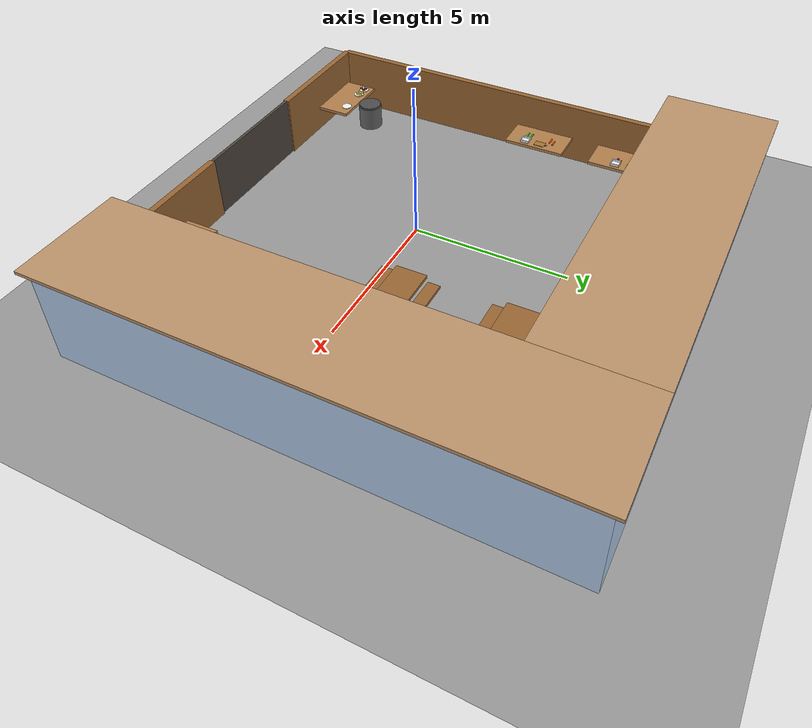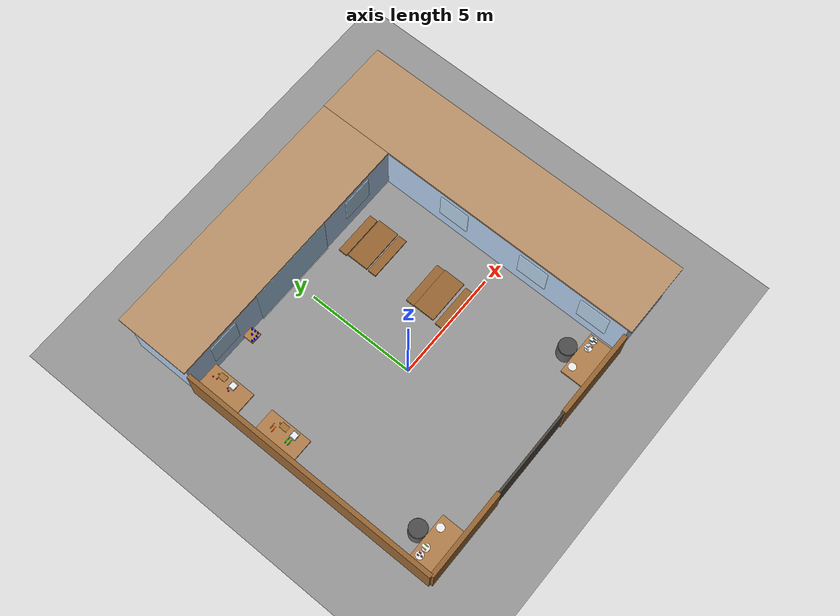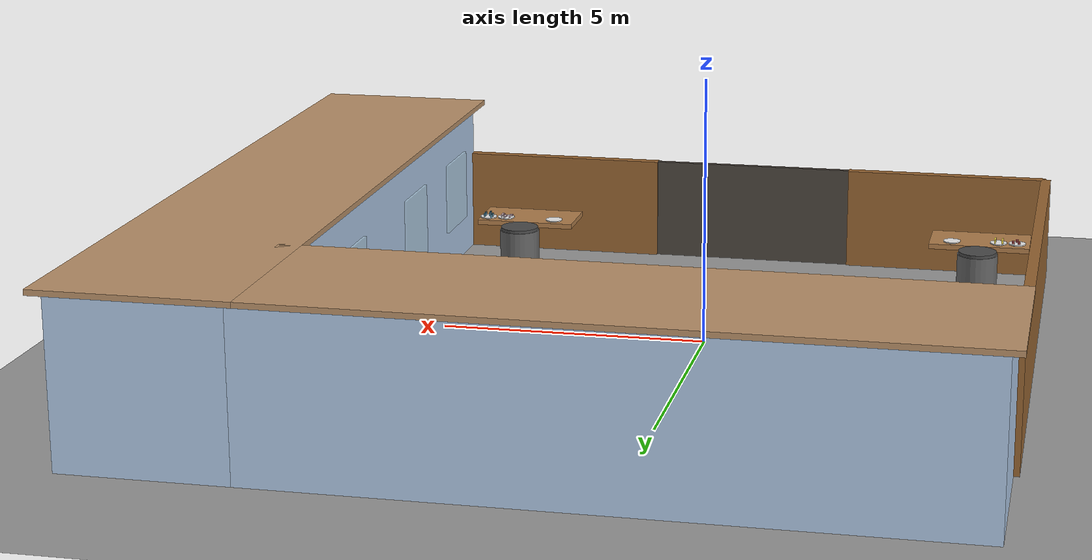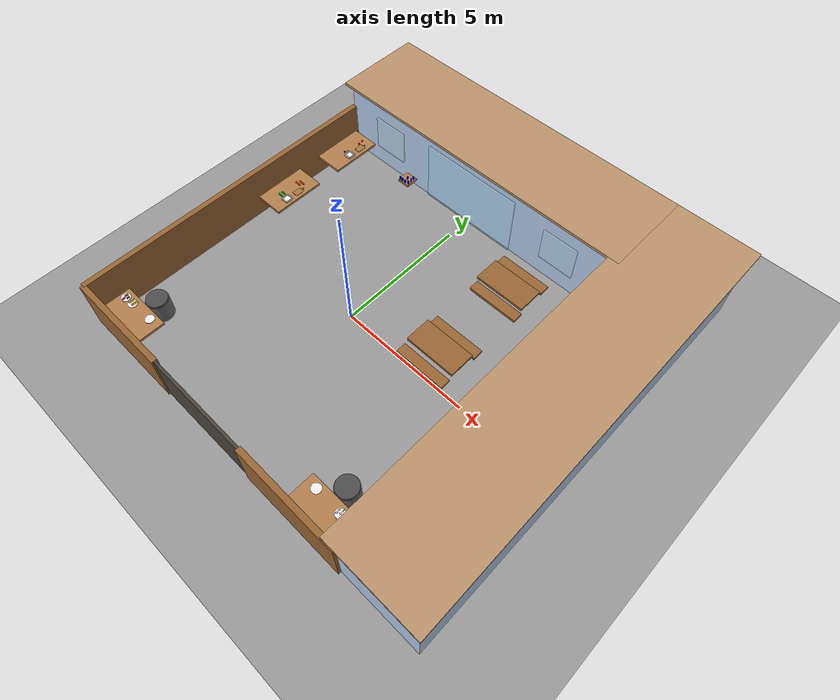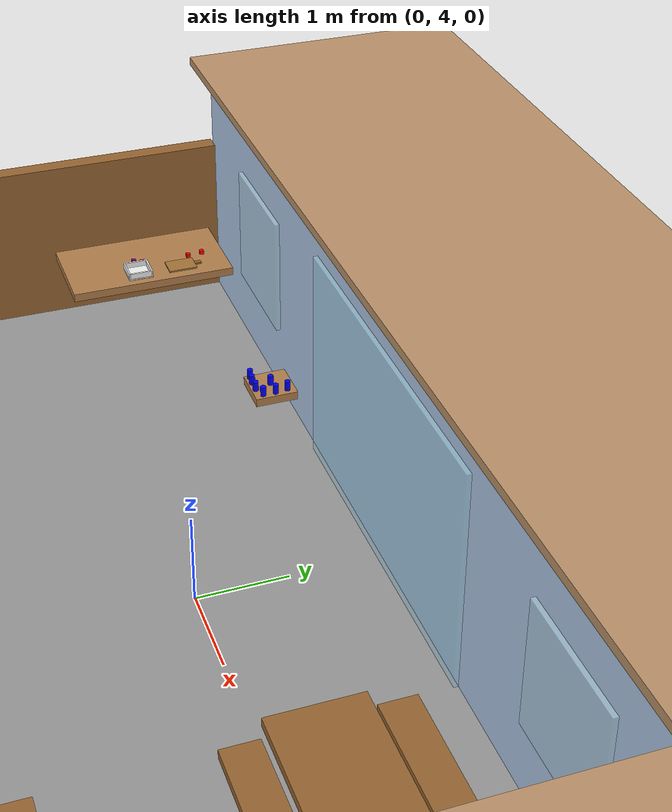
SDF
<sdf version="1.7">
 <world name="backyard_b">
  <physics name="default_physics" type="dart">
   <max_step_size>0.001</max_step_size>
   <real_time_factor>1</real_time_factor>
   <real_time_update_rate>1000</real_time_update_rate>
  </physics>
  <plugin name="gz::sim::systems::Physics" filename="ignition-gazebo-physics-system"/>
  <plugin name="gz::sim::systems::UserCommands" filename="ignition-gazebo-user-commands-system"/>
  <plugin name="gz::sim::systems::SceneBroadcaster" filename="ignition-gazebo-scene-broadcaster-system"/>
  <plugin name="gz::sim::systems::Contact" filename="ignition-gazebo-contact-system"/>
  <gravity>0 0 -9.8</gravity>
  <atmosphere type="adiabatic"/>
  <scene><ambient>0.6 0.6 0.6 1</ambient><background>0.8 0.9 1 1</background><shadows>false</shadows></scene>
  <light name="sun" type="directional">
   <cast_shadows>false</cast_shadows>
   <pose>0 0 10 0 0 0</pose>
   <diffuse>1 1 1 1</diffuse>
   <specular>0.2 0.2 0.2 1</specular>
   <direction>-0.5 0.5 -1</direction>
  </light>
  <model name="ground">
   <static>true</static>
   <link name="link">
    <collision name="collision">
     <geometry><plane><normal>0 0 1</normal><size>100 100</size></plane></geometry>
     <surface>
      <friction><ode><mu>1.0</mu><mu2>1.0</mu2></ode></friction>
      <contact><ode><min_depth>0.001</min_depth></ode></contact>
     </surface>
    </collision>
    <visual name="visual">
     <geometry><plane><normal>0 0 1</normal><size>13 12</size></plane></geometry>
     <material><ambient>0.55 0.55 0.55 1</ambient><diffuse>0.6 0.6 0.6 1</diffuse></material>
    </visual>
   </link>
  </model>
  <model name="fence_left">
   <static>true</static>
   <pose>-6 0 1 0 0 0</pose>
   <link name="link">
    <visual name="visual">
     <geometry><box><size>0.2 12 2</size></box></geometry>
     <material><ambient>0.6 0.4 0.2 1</ambient><diffuse>0.6 0.4 0.2 1</diffuse></material>
    </visual>
   </link>
  </model>
  <model name="fence_south_left">
   <static>true</static>
   <pose>-4 -6 1 0 0 0</pose>
   <link name="link">
    <visual name="visual">
     <geometry><box><size>4 0.2 2</size></box></geometry>
     <material><ambient>0.6 0.4 0.2 1</ambient><diffuse>0.6 0.4 0.2 1</diffuse></material>
    </visual>
   </link>
  </model>
  <model name="fence_south_right">
   <static>true</static>
   <pose>4 -6 1 0 0 0</pose>
   <link name="link">
    <visual name="visual">
     <geometry><box><size>4 0.2 2</size></box></geometry>
     <material><ambient>0.6 0.4 0.2 1</ambient><diffuse>0.6 0.4 0.2 1</diffuse></material>
    </visual>
   </link>
  </model>
  <model name="gate">
   <static>true</static>
   <pose>0 -6 1 0 0 0</pose>
   <link name="link">
    <visual name="visual">
     <geometry><box><size>4 0.1 2</size></box></geometry>
     <material><ambient>0.25 0.22 0.2 1</ambient><diffuse>0.3 0.27 0.24 1</diffuse></material>
    </visual>
   </link>
  </model>
  <model name="house">
   <static>true</static>
   <link name="wing_top">
    <pose>0 7.5 1.5 0 0 0</pose>
    <visual name="visual">
     <geometry><box><size>12 3 3</size></box></geometry>
     <material><ambient>0.65 0.75 0.87 1</ambient><diffuse>0.70 0.80 0.92 1</diffuse></material>
    </visual>
   </link>
   <link name="wing_right">
    <pose>7.5 1.5 1.5 0 0 0</pose>
    <visual name="visual">
     <geometry><box><size>3 15 3</size></box></geometry>
     <material><ambient>0.65 0.75 0.87 1</ambient><diffuse>0.70 0.80 0.92 1</diffuse></material>
    </visual>
   </link>
   <link name="roof_trim_top">
    <pose>0 7.5 3.05 0 0 0</pose>
    <visual name="visual">
     <geometry><box><size>12.4 3.4 0.1</size></box></geometry>
     <material><ambient>0.68 0.53 0.38 1</ambient><diffuse>0.74 0.58 0.42 1</diffuse></material>
    </visual>
   </link>
   <link name="roof_trim_right">
    <pose>7.5 1.5 3.05 0 0 0</pose>
    <visual name="visual">
     <geometry><box><size>3.4 15.4 0.1</size></box></geometry>
     <material><ambient>0.68 0.53 0.38 1</ambient><diffuse>0.74 0.58 0.42 1</diffuse></material>
    </visual>
   </link>
   <link name="window_top_1">
    <pose>-4 6 1.5 0 0 0</pose>
    <visual name="visual">
     <geometry><box><size>1.4 0.1 1.4</size></box></geometry>
     <material><ambient>0.75 0.88 0.95 0.6</ambient><diffuse>0.75 0.88 0.95 0.6</diffuse></material>
    </visual>
   </link>
   <link name="window_top_2">
    <pose>4 6 1.5 0 0 0</pose>
    <visual name="visual">
     <geometry><box><size>1.4 0.1 1.4</size></box></geometry>
     <material><ambient>0.75 0.88 0.95 0.6</ambient><diffuse>0.75 0.88 0.95 0.6</diffuse></material>
    </visual>
   </link>
   <link name="window_right_1">
    <pose>6 -4.5 1.5 0 0 0</pose>
    <visual name="visual">
     <geometry><box><size>0.1 1.4 1.4</size></box></geometry>
     <material><ambient>0.75 0.88 0.95 0.6</ambient><diffuse>0.75 0.88 0.95 0.6</diffuse></material>
    </visual>
   </link>
   <link name="window_right_2">
    <pose>6 -1.5 1.5 0 0 0</pose>
    <visual name="visual">
     <geometry><box><size>0.1 1.4 1.4</size></box></geometry>
     <material><ambient>0.75 0.88 0.95 0.6</ambient><diffuse>0.75 0.88 0.95 0.6</diffuse></material>
    </visual>
   </link>
   <link name="window_right_3">
    <pose>6 2.5 1.5 0 0 0</pose>
    <visual name="visual">
     <geometry><box><size>0.1 1.4 1.4</size></box></geometry>
     <material><ambient>0.75 0.88 0.95 0.6</ambient><diffuse>0.75 0.88 0.95 0.6</diffuse></material>
    </visual>
   </link>
  </model>
  <model name="door">
   <static>true</static>
   <pose>0 6 1.25 0 0 0</pose>
   <link name="link">
    <visual name="visual">
     <geometry><box><size>4 0.1 2.5</size></box></geometry>
     <material><ambient>0.7 0.9 1 0.5</ambient><diffuse>0.7 0.9 1 0.5</diffuse></material>
    </visual>
   </link>
  </model>
  <model name="grill">
   <static>true</static>
   <pose>-4.77 -4.39 0 0 0 0</pose>
   <link name="body">
    <pose>0 0 0.40 0 0 0</pose>
    <visual name="visual">
     <geometry><cylinder><radius>0.4</radius><length>0.80</length></cylinder></geometry>
     <material><ambient>0.3 0.3 0.3 1</ambient><diffuse>0.4 0.4 0.4 1</diffuse></material>
    </visual>
   </link>
   <link name="top">
    <pose>0 0 0.83 0 0 0</pose>
    <collision name="collision">
     <geometry><cylinder><radius>0.38</radius><length>0.06</length></cylinder></geometry>
    </collision>
    <visual name="visual">
     <geometry><cylinder><radius>0.38</radius><length>0.06</length></cylinder></geometry>
     <material><ambient>0.2 0.2 0.2 1</ambient><diffuse>0.3 0.3 0.3 1</diffuse></material>
    </visual>
   </link>
  </model>
  <model name="fish_grill">
   <static>true</static>
   <pose>4.61 -4.4 0 0 0 0</pose>
   <link name="body">
    <pose>0 0 0.40 0 0 0</pose>
    <visual name="visual">
     <geometry><cylinder><radius>0.4</radius><length>0.80</length></cylinder></geometry>
     <material><ambient>0.3 0.3 0.3 1</ambient><diffuse>0.4 0.4 0.4 1</diffuse></material>
    </visual>
   </link>
   <link name="top">
    <pose>0 0 0.83 0 0 0</pose>
    <collision name="collision">
     <geometry><cylinder><radius>0.38</radius><length>0.06</length></cylinder></geometry>
    </collision>
    <visual name="visual">
     <geometry><cylinder><radius>0.38</radius><length>0.06</length></cylinder></geometry>
     <material><ambient>0.2 0.2 0.2 1</ambient><diffuse>0.3 0.3 0.3 1</diffuse></material>
    </visual>
   </link>
  </model>
  <model name="prep_grill">
   <static>true</static>
   <pose>-4.77 -5.34 0.80 0 0 0</pose>
   <link name="link">
    <collision name="collision"><geometry><box><size>2.0 1.1 0.10</size></box></geometry></collision>
    <visual name="visual">
     <geometry><box><size>2.0 1.1 0.10</size></box></geometry>
     <material><ambient>0.7 0.5 0.3 1</ambient><diffuse>0.7 0.5 0.3 1</diffuse></material>
    </visual>
   </link>
  </model>
  <model name="fish_table">
   <static>true</static>
   <pose>4.61 -5.35 0.80 0 0 0</pose>
   <link name="link">
    <collision name="collision"><geometry><box><size>2.0 1.1 0.10</size></box></geometry></collision>
    <visual name="visual">
     <geometry><box><size>2.0 1.1 0.10</size></box></geometry>
     <material><ambient>0.7 0.5 0.3 1</ambient><diffuse>0.7 0.5 0.3 1</diffuse></material>
    </visual>
   </link>
  </model>
  <model name="prep">
   <static>true</static>
   <pose>-5.34 4.87 0.80 0 0 -1.57</pose>
   <link name="link">
    <collision name="collision"><geometry><box><size>2.0 1.1 0.10</size></box></geometry></collision>
    <visual name="visual">
     <geometry><box><size>2.0 1.1 0.10</size></box></geometry>
     <material><ambient>0.7 0.5 0.3 1</ambient><diffuse>0.7 0.5 0.3 1</diffuse></material>
    </visual>
   </link>
  </model>
  <model name="prep_veg">
   <static>true</static>
   <pose>-5.34 1.93 0.80 0 0 -1.57</pose>
   <link name="link">
    <collision name="collision"><geometry><box><size>2.0 1.1 0.10</size></box></geometry></collision>
    <visual name="visual">
     <geometry><box><size>2.0 1.1 0.10</size></box></geometry>
     <material><ambient>0.7 0.5 0.3 1</ambient><diffuse>0.7 0.5 0.3 1</diffuse></material>
    </visual>
   </link>
  </model>
  <model name="table_right_1">
   <static>true</static>
   <pose>3.2 4.5 0.4 0 0 0</pose>
   <link name="link">
    <collision name="collision"><geometry><box><size>2.0 1.0 0.10</size></box></geometry></collision>
    <visual name="visual">
     <geometry><box><size>2.0 1.0 0.10</size></box></geometry>
     <material><ambient>0.6 0.4 0.2 1</ambient><diffuse>0.6 0.4 0.2 1</diffuse></material>
    </visual>
   </link>
  </model>
  <model name="table_right_2">
   <static>true</static>
   <pose>3.2 1.0 0.4 0 0 0</pose>
   <link name="link">
    <collision name="collision"><geometry><box><size>2.0 1.0 0.10</size></box></geometry></collision>
    <visual name="visual">
     <geometry><box><size>2.0 1.0 0.10</size></box></geometry>
     <material><ambient>0.6 0.4 0.2 1</ambient><diffuse>0.6 0.4 0.2 1</diffuse></material>
    </visual>
   </link>
  </model>
  <model name="drink_table">
   <static>true</static>
   <pose>-2.89 5.74 0.3 0 0 0</pose>
   <link name="link">
    <collision name="collision"><geometry><box><size>0.5 0.5 0.10</size></box></geometry></collision>
    <visual name="visual">
     <geometry><box><size>0.5 0.5 0.10</size></box></geometry>
     <material><ambient>0.7 0.5 0.3 1</ambient><diffuse>0.7 0.5 0.3 1</diffuse></material>
    </visual>
   </link>
  </model>
  <model name="bench_1">
   <static>true</static>
   <pose>3.2 5.3 0.2 0 0 0</pose>
   <link name="link">
    <visual name="visual">
     <geometry><box><size>2.0 0.4 0.10</size></box></geometry>
     <material><ambient>0.6 0.4 0.2 1</ambient><diffuse>0.6 0.4 0.2 1</diffuse></material>
    </visual>
   </link>
  </model>
  <model name="bench_2">
   <static>true</static>
   <pose>3.25 3.78 0.2 0 0 0</pose>
   <link name="link">
    <visual name="visual">
     <geometry><box><size>2.0 0.4 0.10</size></box></geometry>
     <material><ambient>0.6 0.4 0.2 1</ambient><diffuse>0.6 0.4 0.2 1</diffuse></material>
    </visual>
   </link>
  </model>
  <model name="bench_3">
   <static>true</static>
   <pose>3.24 1.74 0.2 0 0 0</pose>
   <link name="link">
    <visual name="visual">
     <geometry><box><size>2.0 0.4 0.10</size></box></geometry>
     <material><ambient>0.6 0.4 0.2 1</ambient><diffuse>0.6 0.4 0.2 1</diffuse></material>
    </visual>
   </link>
  </model>
  <model name="bench_4">
   <static>true</static>
   <pose>3.2 0.2 0.19 0 0 0</pose>
   <link name="link">
    <collision name="collision"><geometry><box><size>2.0 0.4 0.10</size></box></geometry></collision>
    <visual name="visual">
     <geometry><box><size>2.0 0.4 0.10</size></box></geometry>
     <material><ambient>0.6 0.4 0.2 1</ambient><diffuse>0.6 0.4 0.2 1</diffuse></material>
    </visual>
   </link>
  </model>
  <include><uri>model://meat</uri><name>meat_1</name><pose>-5.44 -5.04 0.90 0 0 0</pose></include>
  <include><uri>model://meat</uri><name>meat_2</name><pose>-5.51 -5.17 0.90 0 0 0</pose></include>
  <include><uri>model://meat</uri><name>meat_3</name><pose>-5.56 -5.03 0.90 0 0 0</pose></include>
  <include>
   <uri>model://garlic_bread</uri>
   <name>garlic_bread_1</name>
   <pose>-5.23 -5.04 0.92 0 0 0</pose>
  </include>
  <include>
   <uri>model://garlic_bread</uri>
   <name>garlic_bread_2</name>
   <pose>-5.08 -5.04 0.92 0 0 0</pose>
  </include>
  <include><uri>model://plate</uri><name>plate_1</name><pose>-4.22 -5.03 0.850 0 0 0</pose></include>
  <include><uri>model://plate</uri><name>plate_2</name><pose>-5.15 -5.07 0.850 0 0 0</pose></include>
  <include><uri>model://plate</uri><name>plate_3</name><pose>-5.52 -5.08 0.850 0 0 0</pose></include>
  <include><uri>model://fish</uri><name>fish_1</name><pose>5.34 -4.96 0.91 0 0 0</pose></include>
  <include><uri>model://fish</uri><name>fish_2</name><pose>5.41 -5.10 0.91 0 0 0</pose></include>
  <include><uri>model://fish</uri><name>fish_3</name><pose>5.50 -5.03 0.91 0 0 0</pose></include>
  <include><uri>model://squid</uri><name>squid_1</name><pose>4.97 -5.09 0.90 0 0 0</pose></include>
  <include><uri>model://squid</uri><name>squid_2</name><pose>5.07 -5.03 0.90 0 0 0</pose></include>
  <include><uri>model://squid</uri><name>squid_3</name><pose>5.15 -5.13 0.90 0 0 0</pose></include>
  <include><uri>model://plate</uri><name>plate_4</name><pose>4.03 -5.05 0.850 0 0 0</pose></include>
  <include><uri>model://plate</uri><name>plate_5</name><pose>5.06 -5.07 0.850 0 0 0</pose></include>
  <include><uri>model://plate</uri><name>plate_6</name><pose>5.43 -5.04 0.850 0 0 0</pose></include>
  <include><uri>model://tomato</uri><name>tomato_1</name><pose>-5.26 5.60 0.875 0 0 0</pose></include>
  <include><uri>model://tomato</uri><name>tomato_2</name><pose>-5.26 4.84 0.87 0 0 0</pose></include>
  <include><uri>model://tomato</uri><name>tomato_3</name><pose>-5.23 5.42 0.875 0 0 0</pose></include>
  <include><uri>model://chop_board</uri><name>chop_board_1</name><pose>-5.03 5.27 0.86 0 0 1.57</pose></include>
  <include>
   <uri>model://purple_onion</uri>
   <name>purple_onion_1</name>
   <pose>-5.31 4.74 0.87 0 0 0</pose>
  </include>
  <include><uri>model://bowl</uri><name>bowl_1</name><pose>-5.04 4.73 0.850 0 0 0</pose></include>
  <include><uri>model://chop_board</uri><name>chop_board_2</name><pose>-5.02 2.08 0.86 0 0 1.56</pose></include>
  <include><uri>model://carrot</uri><name>carrot_1</name><pose>-5.35 2.35 0.870 0 0 1.56</pose></include>
  <include><uri>model://carrot</uri><name>carrot_2</name><pose>-5.27 2.48 0.870 0 0 1.56</pose></include>
  <include><uri>model://cucumber</uri><name>cucumber_1</name><pose>-5.35 1.66 0.870 0 0 1.56</pose></include>
  <include><uri>model://cucumber</uri><name>cucumber_2</name><pose>-5.36 1.52 0.870 0 0 1.56</pose></include>
  <include><uri>model://bowl</uri><name>bowl_2</name><pose>-5.03 1.56 0.850 0 0 0</pose></include>
  <include><uri>model://drink</uri><name>drink_1</name><pose>-3.09 5.55 0.410 0 0 0</pose></include>
  <include><uri>model://drink</uri><name>drink_2</name><pose>-2.97 5.54 0.410 0 0 0</pose></include>
  <include><uri>model://drink</uri><name>drink_3</name><pose>-2.83 5.54 0.410 0 0 0</pose></include>
  <include><uri>model://drink</uri><name>drink_4</name><pose>-2.70 5.59 0.410 0 0 0</pose></include>
  <include><uri>model://drink</uri><name>drink_5</name><pose>-2.70 5.74 0.410 0 0 0</pose></include>
  <include><uri>model://drink</uri><name>drink_6</name><pose>-2.72 5.89 0.410 0 0 0</pose></include>
  <include><uri>model://drink</uri><name>drink_7</name><pose>-2.89 5.74 0.410 0 0 0</pose></include>
 </world>
</sdf>

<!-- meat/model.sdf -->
<sdf version="1.7">
  <model name="meat">
    <link name="link">

      <inertial>
        <mass>0.20</mass>
        <inertia>
          <ixx>0.000208</ixx>
          <iyy>0.000042</iyy>
          <izz>0.000208</izz>
          <ixy>0</ixy><ixz>0</ixz><iyz>0</iyz>
        </inertia>
      </inertial>

      <collision name="collision">
        <geometry>
          <box><size>0.05 0.10 0.05</size></box>
        </geometry>
        <surface>
          <friction><ode><mu>1.0</mu><mu2>1.0</mu2></ode></friction>
        </surface>
      </collision>

      <visual name="visual">
        <geometry>
          <box><size>0.05 0.10 0.05</size></box>
        </geometry>
        <material>
          <ambient>0.50 0.20 0.20 1</ambient>
          <diffuse>0.60 0.25 0.25 1</diffuse>
        </material>
      </visual>

    </link>
  </model>
</sdf>

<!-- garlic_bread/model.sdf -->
<sdf version="1.7">
  <model name="garlic_bread">
    <link name="link">

      <inertial>
        <mass>0.2</mass>
        <inertia>
          <ixx>0.000773</ixx>
          <iyy>0.000122</iyy>
          <izz>0.000682</izz>
          <ixy>0</ixy><ixz>0</ixz><iyz>0</iyz>
        </inertia>
      </inertial>

      <collision name="collision">
        <geometry>
          <box><size>0.03 0.20 0.08</size></box>
        </geometry>
        <surface>
          <friction><ode><mu>0.6</mu><mu2>0.6</mu2></ode></friction>
        </surface>
      </collision>

      <visual name="visual">
        <geometry>
          <box><size>0.03 0.20 0.08</size></box>
        </geometry>
        <material>
          <ambient>1.0 0.85 0.2 1</ambient>
          <diffuse>1.0 0.90 0.3 1</diffuse>
        </material>
      </visual>

    </link>
  </model>
</sdf>

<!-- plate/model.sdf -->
<sdf version="1.7">
  <model name="plate">
    <static>false</static>
    <link name="link">

      <inertial>
        <mass>0.30</mass>
        <inertia>
          <!-- Approximate as thin disk: ixx=iyy=(1/4)*m*r², izz=(1/2)*m*r² -->
          <ixx>0.001913</ixx>
          <iyy>0.001913</iyy>
          <izz>0.003825</izz>
        </inertia>
      </inertial>

      <!-- Base disc ───────────────────────────────────── -->
      <collision name="base_collision">
        <pose>0 0 0.01 0 0 0</pose>
        <geometry>
          <cylinder><radius>0.15</radius><length>0.02</length></cylinder>
        </geometry>
        <surface><friction><ode><mu>0.8</mu><mu2>0.8</mu2></ode></friction></surface>
      </collision>
      <visual name="base_visual">
        <pose>0 0 0.01 0 0 0</pose>
        <geometry>
          <cylinder><radius>0.15</radius><length>0.02</length></cylinder>
        </geometry>
        <material>
          <ambient>0.95 0.95 0.95 1</ambient>
          <diffuse>1.00 1.00 1.00 1</diffuse>
        </material>
      </visual>

      <!-- Rim ring ─────────────────────────────────────── -->
      <collision name="rim_collision">
        <pose>0 0 0.02 0 0 0</pose>
        <geometry>
          <cylinder><radius>0.17</radius><length>0.02</length></cylinder>
        </geometry>
      </collision>
      <visual name="rim_visual">
        <pose>0 0 0.02 0 0 0</pose>
        <geometry>
          <cylinder><radius>0.17</radius><length>0.02</length></cylinder>
        </geometry>
        <material>
          <ambient>0.90 0.90 0.90 1</ambient>
          <diffuse>0.95 0.95 0.95 1</diffuse>
        </material>
      </visual>

    </link>
  </model>
</sdf>

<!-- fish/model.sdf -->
<sdf version="1.7">
  <model name="fish">
    <link name="link">

      <inertial>
        <mass>0.05</mass>
        <inertia>
          <ixx>0.000075</ixx>
          <iyy>0.00001875</iyy>
          <izz>0.00006375</izz>
          <ixy>0</ixy><ixz>0</ixz><iyz>0</iyz>
        </inertia>
      </inertial>

      <collision name="collision">
        <pose>0 0 0 0 0 0</pose>
        <geometry>
          <box><size>0.03 0.12 0.06</size></box>
        </geometry>
        <surface>
          <friction><ode><mu>0.8</mu><mu2>0.8</mu2></ode></friction>
        </surface>
      </collision>

      <!-- main torso -->
      <visual name="body">
        <pose>0 0 0 0 0 0</pose>
        <geometry>
          <box><size>0.03 0.12 0.06</size></box>
        </geometry>
        <material>
          <ambient>0.25 0.45 0.55 1</ambient>
          <diffuse>0.35 0.58 0.68 1</diffuse>
          <specular>0.3 0.3 0.3 1</specular>
        </material>
      </visual>

      <!-- pale belly stripe -->
      <visual name="belly">
        <pose>0 0 -0.021 0 0 0</pose>
        <geometry>
          <box><size>0.031 0.095 0.018</size></box>
        </geometry>
        <material>
          <ambient>0.85 0.85 0.82 1</ambient>
          <diffuse>0.92 0.92 0.90 1</diffuse>
        </material>
      </visual>

      <!-- tail fin, back (-Y) end -->
      <visual name="tail_fin">
        <pose>0 -0.09 0 0 0 0</pose>
        <geometry>
          <box><size>0.004 0.06 0.08</size></box>
        </geometry>
        <material>
          <ambient>0.15 0.30 0.40 0.85</ambient>
          <diffuse>0.20 0.38 0.48 0.85</diffuse>
        </material>
      </visual>

      <!-- dorsal fin, top -->
      <visual name="dorsal_fin">
        <pose>0 0.005 0.045 0 0 0</pose>
        <geometry>
          <box><size>0.004 0.05 0.03</size></box>
        </geometry>
        <material>
          <ambient>0.15 0.30 0.40 0.85</ambient>
          <diffuse>0.20 0.38 0.48 0.85</diffuse>
        </material>
      </visual>

      <!-- eyes, near front (+Y) end -->
      <visual name="eye_left">
        <pose>0.016 0.045 0.015 0 0 0</pose>
        <geometry>
          <sphere><radius>0.006</radius></sphere>
        </geometry>
        <material>
          <ambient>0.02 0.02 0.02 1</ambient>
          <diffuse>0.05 0.05 0.05 1</diffuse>
        </material>
      </visual>

      <visual name="eye_right">
        <pose>-0.016 0.045 0.015 0 0 0</pose>
        <geometry>
          <sphere><radius>0.006</radius></sphere>
        </geometry>
        <material>
          <ambient>0.02 0.02 0.02 1</ambient>
          <diffuse>0.05 0.05 0.05 1</diffuse>
        </material>
      </visual>

    </link>
  </model>
</sdf>

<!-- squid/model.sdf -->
<sdf version="1.7">
  <model name="squid">
    <link name="link">

      <inertial>
        <mass>0.04</mass>
        <inertia>
          <ixx>0.0000533</ixx>
          <iyy>0.00001067</iyy>
          <izz>0.0000533</izz>
          <ixy>0</ixy><ixz>0</ixz><iyz>0</iyz>
        </inertia>
      </inertial>

      <collision name="collision">
        <pose>0 0 0 0 0 0</pose>
        <geometry>
          <box><size>0.04 0.12 0.04</size></box>
        </geometry>
        <surface>
          <friction><ode><mu>0.6</mu><mu2>0.6</mu2></ode></friction>
        </surface>
      </collision>

      <!-- mantle (main body tube) -->
      <visual name="mantle">
        <pose>0 0 0 1.5708 0 0</pose>
        <geometry>
          <cylinder><radius>0.02</radius><length>0.12</length></cylinder>
        </geometry>
        <material>
          <ambient>0.82 0.68 0.72 0.85</ambient>
          <diffuse>0.90 0.78 0.82 0.85</diffuse>
          <specular>0.4 0.4 0.4 1</specular>
        </material>
      </visual>

      <!-- rounded head cap, front (+Y) end -->
      <visual name="head_cap">
        <pose>0 0.06 0 0 0 0</pose>
        <geometry>
          <sphere><radius>0.02</radius></sphere>
        </geometry>
        <material>
          <ambient>0.82 0.68 0.72 0.85</ambient>
          <diffuse>0.90 0.78 0.82 0.85</diffuse>
        </material>
      </visual>

      <!-- two angled fins near the rear (-Y) end -->
      <visual name="fin_left">
        <pose>0.025 -0.04 0 0 0 0.5</pose>
        <geometry>
          <box><size>0.002 0.055 0.035</size></box>
        </geometry>
        <material>
          <ambient>0.70 0.50 0.56 0.85</ambient>
          <diffuse>0.78 0.58 0.64 0.85</diffuse>
        </material>
      </visual>

      <visual name="fin_right">
        <pose>-0.025 -0.04 0 0 0 -0.5</pose>
        <geometry>
          <box><size>0.002 0.055 0.035</size></box>
        </geometry>
        <material>
          <ambient>0.70 0.50 0.56 0.85</ambient>
          <diffuse>0.78 0.58 0.64 0.85</diffuse>
        </material>
      </visual>

      <!-- eyes on the head -->
      <visual name="eye_left">
        <pose>0.017 0.065 0.006 0 0 0</pose>
        <geometry>
          <sphere><radius>0.005</radius></sphere>
        </geometry>
        <material>
          <ambient>0.03 0.03 0.03 1</ambient>
          <diffuse>0.05 0.05 0.05 1</diffuse>
        </material>
      </visual>

      <visual name="eye_right">
        <pose>-0.017 0.065 0.006 0 0 0</pose>
        <geometry>
          <sphere><radius>0.005</radius></sphere>
        </geometry>
        <material>
          <ambient>0.03 0.03 0.03 1</ambient>
          <diffuse>0.05 0.05 0.05 1</diffuse>
        </material>
      </visual>

      <!-- tentacles, splayed from the front end -->
      <visual name="tentacle_1">
        <pose>0.014 0.10 -0.005 1.0 0 0.2</pose>
        <geometry>
          <cylinder><radius>0.003</radius><length>0.06</length></cylinder>
        </geometry>
        <material>
          <ambient>0.78 0.62 0.68 0.9</ambient>
          <diffuse>0.85 0.70 0.75 0.9</diffuse>
        </material>
      </visual>

      <visual name="tentacle_2">
        <pose>-0.014 0.10 -0.005 1.0 0 -0.2</pose>
        <geometry>
          <cylinder><radius>0.003</radius><length>0.06</length></cylinder>
        </geometry>
        <material>
          <ambient>0.78 0.62 0.68 0.9</ambient>
          <diffuse>0.85 0.70 0.75 0.9</diffuse>
        </material>
      </visual>

      <visual name="tentacle_3">
        <pose>0.006 0.10 -0.012 1.15 0 0.05</pose>
        <geometry>
          <cylinder><radius>0.0025</radius><length>0.05</length></cylinder>
        </geometry>
        <material>
          <ambient>0.78 0.62 0.68 0.9</ambient>
          <diffuse>0.85 0.70 0.75 0.9</diffuse>
        </material>
      </visual>

      <visual name="tentacle_4">
        <pose>-0.006 0.10 -0.012 1.15 0 -0.05</pose>
        <geometry>
          <cylinder><radius>0.0025</radius><length>0.05</length></cylinder>
        </geometry>
        <material>
          <ambient>0.78 0.62 0.68 0.9</ambient>
          <diffuse>0.85 0.70 0.75 0.9</diffuse>
        </material>
      </visual>

    </link>
  </model>
</sdf>

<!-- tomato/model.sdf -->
<sdf version="1.7">
  <model name="tomato">
    <link name="link">

      <inertial>
        <mass>0.05</mass>
        <inertia>
          <!-- (1/6)*m*a² for cube side a=0.05 -->
          <ixx>0.000021</ixx>
          <iyy>0.000021</iyy>
          <izz>0.000021</izz>
        </inertia>
      </inertial>

      <collision name="collision">
        <geometry>
          <box><size>0.05 0.05 0.05</size></box>
        </geometry>
        <surface>
          <friction><ode><mu>0.7</mu><mu2>0.7</mu2></ode></friction>
        </surface>
      </collision>

      <visual name="visual">
        <geometry>
          <box><size>0.05 0.05 0.05</size></box>
        </geometry>
        <material>
          <ambient>1.0 0.0 0.0 1</ambient>
          <diffuse>1.0 0.0 0.0 1</diffuse>
        </material>
      </visual>

    </link>
  </model>
</sdf>

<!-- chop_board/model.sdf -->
<sdf version="1.7">
  <model name="chop_board">
    <static>false</static>
    <link name="link">

      <inertial>
        <!-- Approximate as solid box 0.35 × 0.25 × 0.02 m, ~1.2 kg -->
        <mass>1.2</mass>
        <inertia>
          <!-- ixx=(1/12)*m*(y²+z²)  iyy=(1/12)*m*(x²+z²)  izz=(1/12)*m*(x²+y²) -->
          <ixx>0.006253</ixx>
          <iyy>0.012260</iyy>
          <izz>0.018300</izz>
          <ixy>0</ixy><ixz>0</ixz><iyz>0</iyz>
        </inertia>
      </inertial>

      <!-- Main board ───────────────────────────────── -->
      <collision name="board_collision">
        <pose>0 0 0.01 0 0 0</pose>
        <geometry><box><size>0.35 0.25 0.02</size></box></geometry>
        <surface><friction><ode><mu>0.9</mu><mu2>0.9</mu2></ode></friction></surface>
      </collision>
      <visual name="board_visual">
        <pose>0 0 0.01 0 0 0</pose>
        <geometry><box><size>0.35 0.25 0.02</size></box></geometry>
        <material>
          <ambient>0.55 0.38 0.18 1</ambient>
          <diffuse>0.65 0.46 0.22 1</diffuse>
          <specular>0.04 0.03 0.02 1</specular>
        </material>
      </visual>

      <!-- Handle ───────────────────────────────────── -->
      <collision name="handle_collision">
        <pose>0.215 0 0.01 0 0 0</pose>
        <geometry><box><size>0.08 0.06 0.02</size></box></geometry>
      </collision>
      <visual name="handle_visual">
        <pose>0.215 0 0.01 0 0 0</pose>
        <geometry><box><size>0.08 0.06 0.02</size></box></geometry>
        <material>
          <ambient>0.50 0.32 0.14 1</ambient>
          <diffuse>0.58 0.38 0.16 1</diffuse>
          <specular>0.04 0.03 0.02 1</specular>
        </material>
      </visual>

      <!-- Juice groove — left ──────────────────────── -->

      <!-- Juice groove — right ─────────────────────── -->

      <!-- Front-left foot ──────────────────────────── -->
      <collision name="foot_front_left_collision">
        <pose>-0.15 0.10 -0.005 0 0 0</pose>
        <geometry><cylinder><radius>0.010</radius><length>0.010</length></cylinder></geometry>
        <surface><friction><ode><mu>1.2</mu><mu2>1.2</mu2></ode></friction></surface>
      </collision>
      <visual name="foot_front_left_visual">
        <pose>-0.15 0.10 -0.005 0 0 0</pose>
        <geometry><cylinder><radius>0.010</radius><length>0.010</length></cylinder></geometry>
        <material>
          <ambient>0.08 0.08 0.08 1</ambient>
          <diffuse>0.10 0.10 0.10 1</diffuse>
          <specular>0.01 0.01 0.01 1</specular>
        </material>
      </visual>

      <!-- Front-right foot ─────────────────────────── -->
      <collision name="foot_front_right_collision">
        <pose>0.15 0.10 -0.005 0 0 0</pose>
        <geometry><cylinder><radius>0.010</radius><length>0.010</length></cylinder></geometry>
        <surface><friction><ode><mu>1.2</mu><mu2>1.2</mu2></ode></friction></surface>
      </collision>
      <visual name="foot_front_right_visual">
        <pose>0.15 0.10 -0.005 0 0 0</pose>
        <geometry><cylinder><radius>0.010</radius><length>0.010</length></cylinder></geometry>
        <material>
          <ambient>0.08 0.08 0.08 1</ambient>
          <diffuse>0.10 0.10 0.10 1</diffuse>
          <specular>0.01 0.01 0.01 1</specular>
        </material>
      </visual>

      <!-- Back-left foot ───────────────────────────── -->
      <collision name="foot_back_left_collision">
        <pose>-0.15 -0.10 -0.005 0 0 0</pose>
        <geometry><cylinder><radius>0.010</radius><length>0.010</length></cylinder></geometry>
        <surface><friction><ode><mu>1.2</mu><mu2>1.2</mu2></ode></friction></surface>
      </collision>
      <visual name="foot_back_left_visual">
        <pose>-0.15 -0.10 -0.005 0 0 0</pose>
        <geometry><cylinder><radius>0.010</radius><length>0.010</length></cylinder></geometry>
        <material>
          <ambient>0.08 0.08 0.08 1</ambient>
          <diffuse>0.10 0.10 0.10 1</diffuse>
          <specular>0.01 0.01 0.01 1</specular>
        </material>
      </visual>

      <!-- Back-right foot ──────────────────────────── -->
      <collision name="foot_back_right_collision">
        <pose>0.15 -0.10 -0.005 0 0 0</pose>
        <geometry><cylinder><radius>0.010</radius><length>0.010</length></cylinder></geometry>
        <surface><friction><ode><mu>1.2</mu><mu2>1.2</mu2></ode></friction></surface>
      </collision>
      <visual name="foot_back_right_visual">
        <pose>0.15 -0.10 -0.005 0 0 0</pose>
        <geometry><cylinder><radius>0.010</radius><length>0.010</length></cylinder></geometry>
        <material>
          <ambient>0.08 0.08 0.08 1</ambient>
          <diffuse>0.10 0.10 0.10 1</diffuse>
          <specular>0.01 0.01 0.01 1</specular>
        </material>
      </visual>

    </link>
  </model>
</sdf>

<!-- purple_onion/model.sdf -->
<sdf version="1.7">
  <model name="purple_onion">
    <link name="link">

      <inertial>
        <mass>0.05</mass>
        <inertia>
          <!-- (1/6)*m*a² for cube side a=0.05 -->
          <ixx>0.000021</ixx>
          <iyy>0.000021</iyy>
          <izz>0.000021</izz>
        </inertia>
      </inertial>

      <collision name="collision">
        <geometry>
          <box><size>0.05 0.05 0.05</size></box>
        </geometry>
        <surface>
          <friction><ode><mu>0.7</mu><mu2>0.7</mu2></ode></friction>
        </surface>
      </collision>

      <visual name="visual">
        <geometry>
          <box><size>0.05 0.05 0.05</size></box>
        </geometry>
        <material>
          <ambient>0.5 0.0 0.5 1</ambient>
          <diffuse>0.5 0.0 0.5 1</diffuse>
          <specular>0.1 0.0 0.1 1</specular>
        </material>
      </visual>

    </link>
  </model>
</sdf>

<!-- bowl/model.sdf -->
<sdf version="1.7">
  <model name="bowl">
    <static>false</static>
    <link name="link">

      <inertial>
        <mass>0.5</mass>
        <inertia>
          <ixx>0.002</ixx>
          <iyy>0.002</iyy>
          <izz>0.002</izz>
        </inertia>
      </inertial>

      <!-- Base ─────────────────────────────────────────── -->
      <collision name="base_collision">
        <pose>0 0 0.01 0 0 0</pose>
        <geometry><box><size>0.30 0.30 0.02</size></box></geometry>
        <surface><friction><ode><mu>0.8</mu><mu2>0.8</mu2></ode></friction></surface>
      </collision>
      <visual name="base_visual">
        <pose>0 0 0.01 0 0 0</pose>
        <geometry><box><size>0.30 0.30 0.02</size></box></geometry>
        <material><ambient>0.9 0.9 0.9 1</ambient><diffuse>0.95 0.95 0.95 1</diffuse></material>
      </visual>

      <!-- Front wall (+Y face) ─────────────────────────── -->
      <collision name="wall_front_collision">
        <pose>0 0.14 0.05 0 0 0</pose>
        <geometry><box><size>0.30 0.02 0.08</size></box></geometry>
      </collision>
      <visual name="wall_front_visual">
        <pose>0 0.14 0.05 0 0 0</pose>
        <geometry><box><size>0.30 0.02 0.08</size></box></geometry>
        <material><ambient>0.9 0.9 0.9 1</ambient><diffuse>0.95 0.95 0.95 1</diffuse></material>
      </visual>

      <!-- Back wall (-Y face) ──────────────────────────── -->
      <collision name="wall_back_collision">
        <pose>0 -0.14 0.05 0 0 0</pose>
        <geometry><box><size>0.30 0.02 0.08</size></box></geometry>
      </collision>
      <visual name="wall_back_visual">
        <pose>0 -0.14 0.05 0 0 0</pose>
        <geometry><box><size>0.30 0.02 0.08</size></box></geometry>
        <material><ambient>0.9 0.9 0.9 1</ambient><diffuse>0.95 0.95 0.95 1</diffuse></material>
      </visual>

      <!-- Left wall (-X face) ──────────────────────────── -->
      <collision name="wall_left_collision">
        <pose>-0.14 0 0.05 0 0 0</pose>
        <geometry><box><size>0.02 0.30 0.08</size></box></geometry>
      </collision>
      <visual name="wall_left_visual">
        <pose>-0.14 0 0.05 0 0 0</pose>
        <geometry><box><size>0.02 0.30 0.08</size></box></geometry>
        <material><ambient>0.9 0.9 0.9 1</ambient><diffuse>0.95 0.95 0.95 1</diffuse></material>
      </visual>

      <!-- Right wall (+X face) ─────────────────────────── -->
      <collision name="wall_right_collision">
        <pose>0.14 0 0.05 0 0 0</pose>
        <geometry><box><size>0.02 0.30 0.08</size></box></geometry>
      </collision>
      <visual name="wall_right_visual">
        <pose>0.14 0 0.05 0 0 0</pose>
        <geometry><box><size>0.02 0.30 0.08</size></box></geometry>
        <material><ambient>0.9 0.9 0.9 1</ambient><diffuse>0.95 0.95 0.95 1</diffuse></material>
      </visual>

    </link>
  </model>
</sdf>

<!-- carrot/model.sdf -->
<sdf version="1.7">
  <model name="carrot">
    <link name="link">
      <!-- pitch = π/2 lays the carrot on its side (long axis along world X) -->
      <pose>0 0 0 0 1.5708 0</pose>

      <inertial>
        <mass>0.12</mass>
        <inertia>
          <ixx>0.000650</ixx>
          <iyy>0.000008</iyy>
          <izz>0.000650</izz>
        </inertia>
      </inertial>

      <collision name="collision">
        <geometry>
          <box><size>0.04 0.25 0.04</size></box>
        </geometry>
        <surface>
          <friction><ode><mu>0.8</mu><mu2>0.8</mu2></ode></friction>
        </surface>
      </collision>

      <visual name="visual">
        <geometry>
          <box><size>0.04 0.25 0.04</size></box>
        </geometry>
        <material>
          <ambient>1.0 0.333 0.0 1</ambient>
          <diffuse>1.0 0.333 0.0 1</diffuse>
        </material>
      </visual>

    </link>
  </model>
</sdf>

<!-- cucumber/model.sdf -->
<sdf version="1.7">
  <model name="cucumber">
    <link name="link">
      <!-- pitch = π/2 lays the cucumber on its side (long axis along world X) -->
      <pose>0 0 0 0 1.5708 0</pose>

      <inertial>
        <mass>0.10</mass>
        <inertia>
          <ixx>0.000541</ixx>
          <iyy>0.000007</iyy>
          <izz>0.000541</izz>
        </inertia>
      </inertial>

      <collision name="collision">
        <geometry>
          <box><size>0.04 0.25 0.04</size></box>
        </geometry>
        <surface>
          <friction><ode><mu>0.8</mu><mu2>0.8</mu2></ode></friction>
        </surface>
      </collision>

      <visual name="visual">
        <geometry>
          <box><size>0.04 0.25 0.04</size></box>
        </geometry>
        <material>
          <ambient>0.0 0.7 0.0 1</ambient>
          <diffuse>0.0 0.8 0.0 1</diffuse>
        </material>
      </visual>

    </link>
  </model>
</sdf>

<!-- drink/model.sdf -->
<sdf version="1.8">
  <model name="drink">
    <static>false</static>
    <link name="can_link">

      <inertial>
        <mass>0.35</mass>
        <inertia>
          <!-- Solid cylinder: ixx=iyy=(1/12)*m*(3r²+h²), izz=(1/2)*m*r² -->
          <ixx>0.000581</ixx>
          <iyy>0.000581</iyy>
          <izz>0.000190</izz>
        </inertia>
      </inertial>

      <collision name="collision">
        <geometry>
          <cylinder>
            <radius>0.033</radius>
            <length>0.12</length>
          </cylinder>
        </geometry>
        <surface>
          <friction><ode><mu>0.6</mu><mu2>0.6</mu2></ode></friction>
        </surface>
      </collision>

      <visual name="visual">
        <geometry>
          <cylinder>
            <radius>0.033</radius>
            <length>0.12</length>
          </cylinder>
        </geometry>
        <material>
          <ambient>0.0 0.0 0.8 1</ambient>
          <diffuse>0.0 0.0 1.0 1</diffuse>
          <specular>0.2 0.2 0.2 1</specular>
        </material>
      </visual>

    </link>
  </model>
</sdf>
